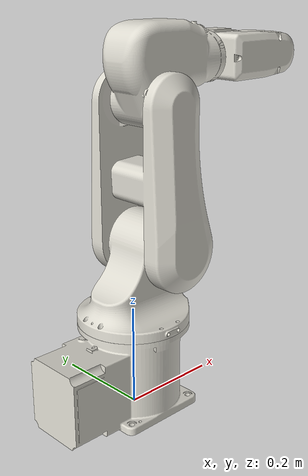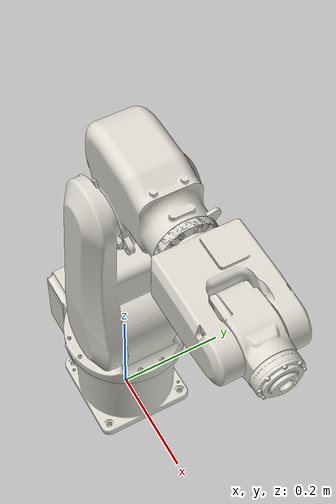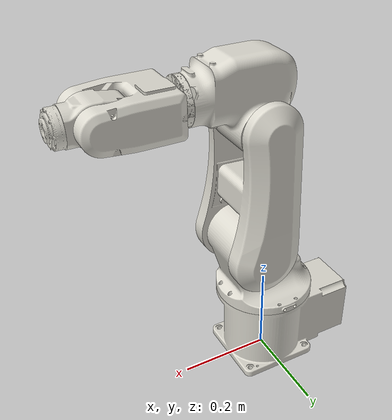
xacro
<?xml version="1.0"?>
<robot xmlns:xacro="http://www.ros.org/wiki/xacro" name="i5_a3">
  	<link name="world"/>
	<xacro:include filename="$(find i5_a3_support)/urdf/a3_macro.xacro"/>
  	<xacro:i5_a3 prefix=""/>
  	<joint name="fixed" type="fixed">
    	<parent link="world"/>
    	<child link="base_link"/>
  	</joint>
</robot>

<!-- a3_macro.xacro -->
<robot xmlns:xacro="http://ros.org/wiki/xacro">
<!-- Include all common properties -->
  <xacro:include filename="$(find i5_resources)/urdf/common_colours.xacro"/>
  <xacro:include filename="$(find i5_resources)/urdf/common_constants.xacro"/>
  <xacro:include filename="$(find i5_resources)/urdf/common_materials.xacro"/>
<!-- Robot DH parameters define joint-->
<xacro:property name="lengthpar1" value="0.3215" />
<xacro:property name="lengthpar2" value="0.27" />
<xacro:property name="lengthpar3" value="0.07" />
<xacro:property name="lengthpar4" value="0.05" />
<xacro:property name="lengthpar5" value="0.299" />
<xacro:property name="lengthpar6" value="0.0785"/>
<!-- Robot visual and  collision dir-->
<xacro:property name="visual_base" value="package://i5_a3_support/meshes/a3/visual/base_link.stl" />
<xacro:property name="visual_link1" value="package://i5_a3_support/meshes/a3/visual/link1.stl" />
<xacro:property name="visual_link2" value="package://i5_a3_support/meshes/a3/visual/link2.stl" />
<xacro:property name="visual_link3" value="package://i5_a3_support/meshes/a3/visual/link3.stl" />
<xacro:property name="visual_link4" value="package://i5_a3_support/meshes/a3/visual/link4.stl" />
<xacro:property name="visual_link5" value="package://i5_a3_support/meshes/a3/visual/link5.stl" />
<xacro:property name="visual_link6" value="package://i5_a3_support/meshes/a3/visual/link6.stl" />

<xacro:property name="collision_base" value="package://i5_a3_support/meshes/a3/collision/base_link.stl" />
<xacro:property name="collision_link1" value="package://i5_a3_support/meshes/a3/collision/link1.stl" />
<xacro:property name="collision_link2" value="package://i5_a3_support/meshes/a3/collision/link2.stl" />
<xacro:property name="collision_link3" value="package://i5_a3_support/meshes/a3/collision/link3.stl" />
<xacro:property name="collision_link4" value="package://i5_a3_support/meshes/a3/collision/link4.stl" />
<xacro:property name="collision_link5" value="package://i5_a3_support/meshes/a3/collision/link5.stl" />
<xacro:property name="collision_link6" value="package://i5_a3_support/meshes/a3/collision/link6.stl" />
<!-- Robot link mass-->
<xacro:property name="mass_link1" value="6.30714651" />
<xacro:property name="mass_link2" value="4.74603309" />
<xacro:property name="mass_link3" value="3.61734129" />
<xacro:property name="mass_link4" value="2.14173747" />
<xacro:property name="mass_link5" value="1.39756577" />
<xacro:property name="mass_link6" value="0.07855314"/>

<!-- Limit of joints-->
<xacro:property name="joint1_upper_limit" value="2.827433388230814" />
<xacro:property name="joint2_upper_limit" value="2.216568150032799" />
<xacro:property name="joint3_upper_limit" value="1.082104136236484" />
<xacro:property name="joint4_upper_limit" value="3.089232776029963" />
<xacro:property name="joint5_upper_limit" value="1.867502299633933" />
<xacro:property name="joint6_upper_limit" value="6.230825429619756" />

<xacro:property name="joint1_lower_limit" value="-2.827433388230814" />
<xacro:property name="joint2_lower_limit" value="-1.518436449235067" />
<xacro:property name="joint3_lower_limit" value="-1.780235837034216" />
<xacro:property name="joint4_lower_limit" value="-3.089232776029963" />
<xacro:property name="joint5_lower_limit" value="-1.867502299633933" />
<xacro:property name="joint6_lower_limit" value="-6.230825429619756" />

<xacro:macro name="i5_a3" params="prefix">

<!-- link list -->
<link name="${prefix}base_link">
	<visual>
		<geometry>
			<mesh filename="${visual_base}"/>
		</geometry>
    	<xacro:material_i5_white name="white"/>
	</visual>
	<collision>
		<geometry>
			<mesh filename="${collision_base}" />
		</geometry>
    	<xacro:material_i5_yellow name="yellow"/>
	</collision>
</link>
<link name="${prefix}link_1">
	<visual>
		<geometry>
			<mesh filename="${visual_link1}" />
		</geometry>
    	<xacro:material_i5_white name="white"/>
	</visual>
	<collision>
		<geometry>
			<mesh filename="${collision_link1}" />
		</geometry>
    	<xacro:material_i5_yellow name="yellow"/>
	</collision>

    <inertial>
      <origin xyz="0.02871795 -0.01560624 0.26837199" rpy="0.0 0.0 0.0"/>
      <mass value="${mass_link1}"/>
      <inertia
	  ixx="0.04357680" ixy="-0.00206012" ixz="0.00889497"
	  iyy="0.04518431" iyz="-0.00497282"
	  izz="0.03284441"/>
    </inertial>
</link>
<link name="${prefix}link_2">
	<visual>
		<geometry>
			<mesh filename="${visual_link2}" />
		</geometry>
    	<xacro:material_i5_white name="white"/>
	</visual>
	<collision>
		<geometry>
			<mesh filename="${collision_link2}" />
		</geometry>
    	<xacro:material_i5_yellow name="yellow"/>
	</collision>

    <inertial>
      <origin xyz="-0.00109202 -0.13604744 -0.02344836" rpy="0.0 0.0 0.0"/>
      <mass value="${mass_link2}"/>
      <inertia
	  ixx="0.06327383" ixy="0.00004884" ixz="-0.00038454"
	  iyy="0.02015817" iyz="-0.00034710"
	  izz="0.05286486"/>
    </inertial>
</link>
<link name="${prefix}link_3">
	<visual>
		<geometry>
			<mesh filename="${visual_link3}" />
		</geometry>
    	<xacro:material_i5_white name="white"/>
	</visual>
	<collision>
		<geometry>
			<mesh filename="${collision_link3}" />
		</geometry>
    	<xacro:material_i5_yellow name="yellow"/>
	</collision>

    <inertial>
      <origin xyz="0.06285180 0.06483556 -0.00131193" rpy="0.0 0.0 0.0"/>
      <mass value="${mass_link3}"/>
      <inertia
	  ixx="0.01479961" ixy="0.00219315" ixz="0.00031335"
	  iyy="0.00830250" iyz="0.00031368"
	  izz="0.01833254"/>
    </inertial>
</link>
<link name="${prefix}link_4">
	<visual>
		<geometry>
			<mesh filename="${visual_link4}" />
		</geometry>
    	<xacro:material_i5_white name="white"/>
	</visual>
	<collision>
		<geometry>
			<mesh filename="${collision_link4}" />
		</geometry>
    	<xacro:material_i5_yellow name="yellow"/>
	</collision>

    <inertial>
      <origin xyz="0.00078233 0.01962462 0.07572740" rpy="0.0 0.0 0.0"/>
      <mass value="${mass_link4}"/>
      <inertia
	  ixx="0.00972215" ixy="0.00000305" ixz="0.00003964"
	  iyy="0.00874755" iyz="-0.00174588"
	  izz="0.00326536"/>
    </inertial>
</link>
<link name="${prefix}link_5">
	<visual>
		<geometry>
			<mesh filename="${visual_link5}" />
		</geometry>
    	<xacro:material_i5_white name="white"/>
	</visual>
	<collision>
		<geometry>
			<mesh filename="${collision_link5}" />
		</geometry>
    	<xacro:material_i5_yellow name="yellow"/>
	</collision>
    <inertial>
      <origin xyz="0.00002864 -0.02906346 -0.00131185" rpy="0.0 0.0 0.0"/>
      <mass value="${mass_link5}"/>
      <inertia
	  ixx="0.00241227" ixy="0.00000410" ixz="0.00000860"
	  iyy="0.00086254" iyz="-0.00005889"
	  izz="0.00251468"/>
    </inertial>
</link>
<link name="${prefix}link_6">
	<visual>
		<geometry>
			<mesh filename="${visual_link6}" />
		</geometry>
    	<xacro:material_i5_white name="white"/>
	</visual>
	<collision>
		<geometry>
			<mesh filename="${collision_link6}" />
		</geometry>
    	<xacro:material_i5_yellow name="yellow"/>
	</collision>
    <inertial>
      <origin xyz="0 0 0.08429974" rpy="0 0 0"/>
      <mass value="${mass_link6}"/>
      <inertia
	  ixx="0.00002229" ixy="0.0" ixz="0.0"
	  iyy="0.00002229" iyz="0.0"
	  izz="0.00004072"/>
    </inertial>
</link>

<link name="${prefix}base" />
<link name="${prefix}tool0"/>
<!-- end of link list -->

<!-- joint list -->
<joint name="${prefix}joint_1" type="revolute">
	<parent link="${prefix}base_link"/>
	<child link="${prefix}link_1"/>
	<origin xyz="0 0 0" rpy="0 0 0"/>
	<axis xyz="0 0 1" />
	<limit lower="${joint1_lower_limit}" upper="${joint1_upper_limit}" effort="100" velocity="4.01425" />
</joint>
<joint name="${prefix}joint_2" type="revolute">
	<parent link="${prefix}link_1"/>
	<child link="${prefix}link_2"/>
        <origin xyz="${lengthpar4} 0 ${lengthpar1}" rpy="${-PI_2} 0 0"/>
	<axis xyz="0 0 1" />
	<limit lower="${joint2_lower_limit}" upper="${joint2_upper_limit}" effort="100" velocity="4.01425" />
</joint>
<joint name="${prefix}joint_3" type="revolute">
	<parent link="${prefix}link_2"/>
	<child link="${prefix}link_3"/>
        <origin xyz="0 ${-lengthpar2} 0" rpy="0 0 ${-PI_2}"/>
	<axis xyz="0 0 1" />
	<limit lower="${joint3_lower_limit}" upper="${joint3_upper_limit}" effort="100" velocity="4.36332" />
</joint>
<joint name="${prefix}joint_4" type="revolute">
	<parent link="${prefix}link_3"/>
	<child link="${prefix}link_4"/>
       <origin xyz="${lengthpar3} ${lengthpar5} 0" rpy="${PI_2} 0 0"/>
	<axis xyz="0 0 1" />
	<limit lower="${joint4_lower_limit}" upper="${joint4_upper_limit}" effort="100" velocity="5.58505" />
</joint>
<joint name="${prefix}joint_5" type="revolute">
	<parent link="${prefix}link_4"/>
	<child link="${prefix}link_5"/>
        <origin xyz="0 0 0" rpy="${PI_2} 0 0"/>
	<axis xyz="0 0 1" />
	<limit lower="${joint5_lower_limit}" upper="${joint5_upper_limit}" effort="5.5" velocity="5.58505" />
</joint>
<joint name="${prefix}joint_6" type="revolute">
	<parent link="${prefix}link_5"/>
	<child link="${prefix}link_6"/>
        <origin xyz="0  ${-lengthpar6} 0" rpy="${PI_2} 0 0"/>
	<axis xyz="0 0 1" />
	<limit lower="${joint6_lower_limit}" upper="${joint6_upper_limit}" effort="4.6" velocity="7.3303" />
</joint>
<joint name="${prefix}joint_6-tool0" type="fixed">
      <parent link="${prefix}link_6"/>
      <child link="${prefix}tool0"/>
      <origin xyz="0 0 0" rpy="0 0 0" />
</joint>

<joint name="${prefix}base_link-base" type="fixed">
      <parent link="${prefix}base_link"/>
      <child link="${prefix}base"/>
      <origin xyz="0.0 0.0 0.0" rpy="0 0 0"/>
</joint>
<!-- end of joint list -->

</xacro:macro>
</robot>

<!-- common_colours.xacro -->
<robot xmlns:xacro="http://ros.org/wiki/xacro">

  <!-- common colours define for i5 Robot -->
  <xacro:property name="color_i5_yellow"   value="0.96 0.76 0.13 1.0" />
  <xacro:property name="color_i5_white"    value="0.86 0.85 0.81 1.0" />
  <xacro:property name="color_i5_grey"     value="0.34 0.35 0.36 1.0" />

  <xacro:property name="color_i5_blue"    value="0.0 0.0 1.0 1.0" />
  <xacro:property name="color_i5_black"    value="0.15 0.15 0.15 1.0" />
  <xacro:property name="color_i5_greyish"  value="0.75 0.75 0.75 1.0" />
  <xacro:property name="color_i5_green"    value="${  0/255} ${155/255} ${ 70/255} 1.0" />

</robot>

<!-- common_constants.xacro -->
<robot xmlns:xacro="http://ros.org/wiki/xacro">

  <!-- Global constants for i5 Robot -->
<xacro:property name="PI" value="3.1415926535897931"/>
<xacro:property name="PI_2" value="1.570796327"/>
</robot>

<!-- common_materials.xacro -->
<robot xmlns:xacro="http://ros.org/wiki/xacro">
  <xacro:include filename="$(find i5_resources)/urdf/common_colours.xacro"/>

  <xacro:macro name="material_i5_yellow" params="name">
    <material name="${name}">
      <color rgba="${color_i5_yellow}"/>
    </material>
  </xacro:macro>

  <xacro:macro name="material_i5_white" params="name">
    <material name="${name}">
      <color rgba="${color_i5_white}"/>
    </material>
  </xacro:macro>

  <xacro:macro name="material_i5_grey" params="name">
    <material name="${name}">
      <color rgba="${color_i5_grey}"/>
    </material>
  </xacro:macro>

  <xacro:macro name="material_i5_blue" params="name">
    <material name="${name}">
      <color rgba="${color_i5_blue}"/>
    </material>
  </xacro:macro>

  <xacro:macro name="material_i5_black" params="name">
    <material name="${name}">
      <color rgba="${color_i5_black}"/>
    </material>
  </xacro:macro>

  <xacro:macro name="material_i5_greyish" params="name">
    <material name="${name}">
      <color rgba="${color_i5_greyish}"/>
    </material>
  </xacro:macro>

  <xacro:macro name="material_i5_green" params="name">
    <material name="${name}">
      <color rgba="${color_i5_green}"/>
    </material>
  </xacro:macro>

</robot>
